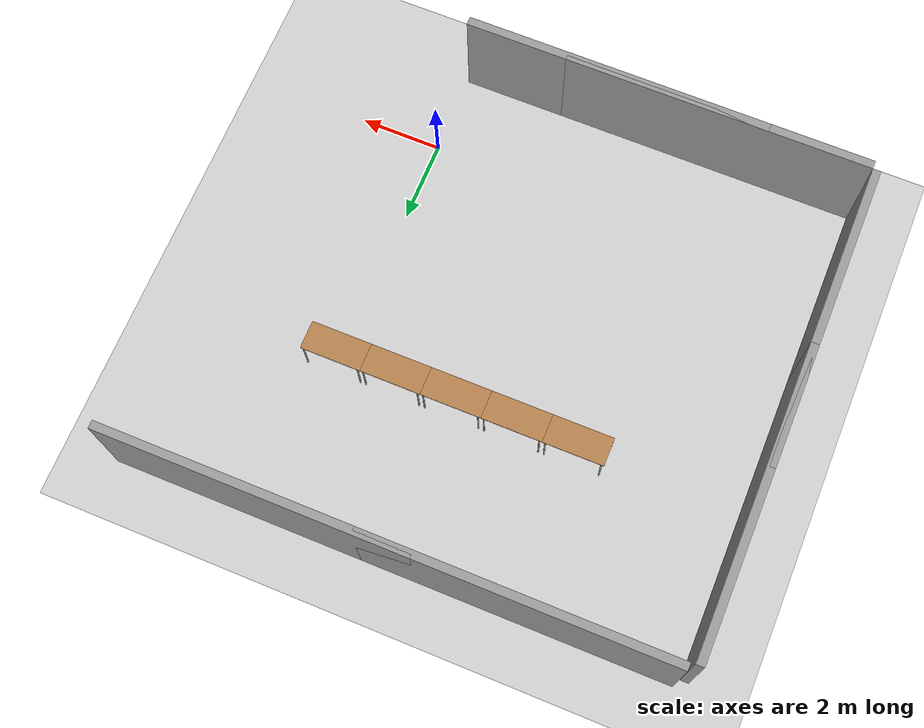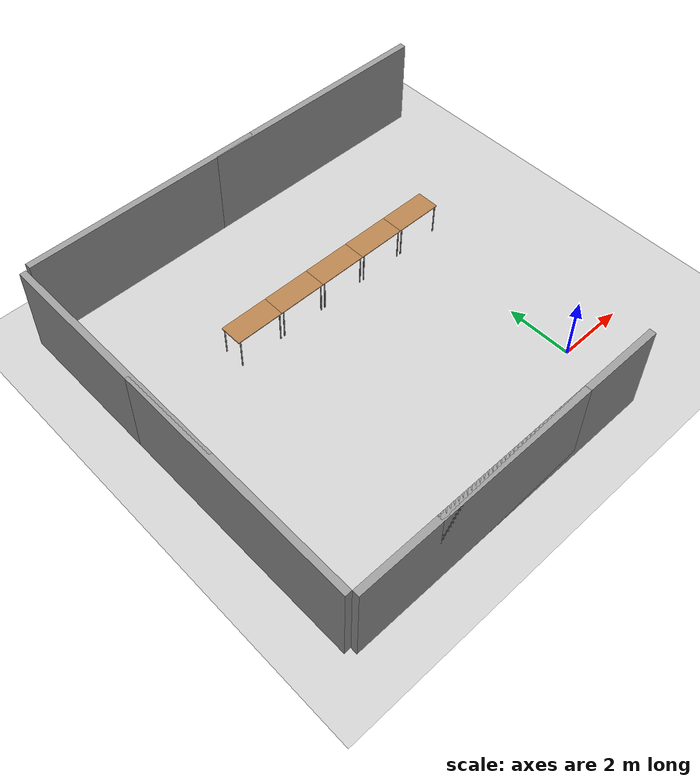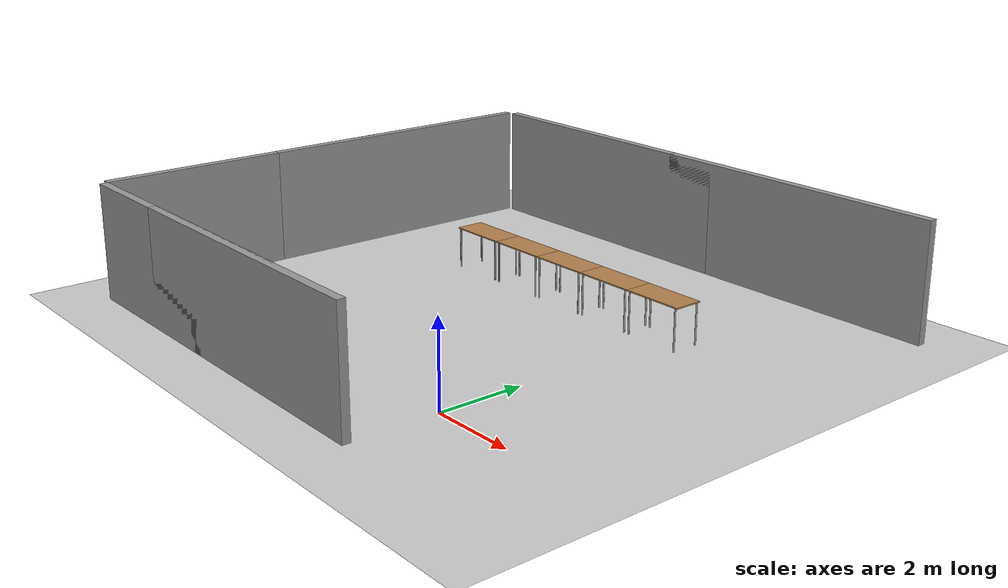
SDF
<sdf version="1.6">
 <world name="default">
  <model name="ground_plane">
   <static>1</static>
   <link name="link">
    <collision name="collision">
     <geometry><plane><normal>0 0 1</normal><size>100 100</size></plane></geometry>
     <surface>
      <contact><collide_bitmask>65535</collide_bitmask></contact>
      <friction><ode><mu>100</mu><mu2>50</mu2></ode></friction>
     </surface>
    </collision>
    <visual name="visual">
     <cast_shadows>0</cast_shadows>
     <geometry><plane><normal>0 0 1</normal><size>100 100</size></plane></geometry>
     <material>
      <script><uri>file://media/materials/scripts/gazebo.material</uri><name>Gazebo/Grey</name></script>
     </material>
    </visual>
   </link>
  </model>
  <model name="grey_wall">
   <static>1</static>
   <link name="link">
    <pose>0 0 1.4 0 -0 0</pose>
    <collision name="collision"><geometry><box><size>7.5 0.2 2.8</size></box></geometry></collision>
    <visual name="visual">
     <cast_shadows>0</cast_shadows>
     <geometry><box><size>7.5 0.2 2.8</size></box></geometry>
     <material>
      <script>
       <uri>model://grey_wall/materials/scripts</uri>
       <uri>model://grey_wall/materials/textures</uri>
       <name>vrc/grey_wall</name>
      </script>
     </material>
    </visual>
   </link>
   <pose>-3.75 -2.1 0 0 -0 0</pose>
  </model>
  <model name="grey_wall_1">
   <static>1</static>
   <link name="link">
    <pose>0 0 1.4 0 -0 0</pose>
    <collision name="collision"><geometry><box><size>7.5 0.2 2.8</size></box></geometry></collision>
    <visual name="visual">
     <cast_shadows>0</cast_shadows>
     <geometry><box><size>7.5 0.2 2.8</size></box></geometry>
     <material>
      <script>
       <uri>model://grey_wall/materials/scripts</uri>
       <uri>model://grey_wall/materials/textures</uri>
       <name>vrc/grey_wall</name>
      </script>
     </material>
    </visual>
   </link>
   <pose>-6.25 -2.1 0 0 -0 0</pose>
  </model>
  <model name="grey_wall_3">
   <static>1</static>
   <link name="link">
    <pose>0 0 1.4 0 -0 0</pose>
    <collision name="collision"><geometry><box><size>7.5 0.2 2.8</size></box></geometry></collision>
    <visual name="visual">
     <cast_shadows>0</cast_shadows>
     <geometry><box><size>7.5 0.2 2.8</size></box></geometry>
     <material>
      <script>
       <uri>model://grey_wall/materials/scripts</uri>
       <uri>model://grey_wall/materials/textures</uri>
       <name>vrc/grey_wall</name>
      </script>
     </material>
    </visual>
   </link>
   <pose>-10.1 1.75 0 0 -0 1.5708</pose>
  </model>
  <model name="grey_wall_3_clone">
   <static>1</static>
   <link name="link">
    <pose>0 0 1.4 0 -0 0</pose>
    <collision name="collision"><geometry><box><size>7.5 0.2 2.8</size></box></geometry></collision>
    <visual name="visual">
     <cast_shadows>0</cast_shadows>
     <geometry><box><size>7.5 0.2 2.8</size></box></geometry>
     <material>
      <script>
       <uri>model://grey_wall/materials/scripts</uri>
       <uri>model://grey_wall/materials/textures</uri>
       <name>vrc/grey_wall</name>
      </script>
     </material>
    </visual>
   </link>
   <pose>-10.1 6.25 0 0 -0 1.5708</pose>
  </model>
  <model name="grey_wall_1_clone">
   <static>1</static>
   <link name="link">
    <pose>0 0 1.4 0 -0 0</pose>
    <collision name="collision"><geometry><box><size>7.5 0.2 2.8</size></box></geometry></collision>
    <visual name="visual">
     <cast_shadows>0</cast_shadows>
     <geometry><box><size>7.5 0.2 2.8</size></box></geometry>
     <material>
      <script>
       <uri>model://grey_wall/materials/scripts</uri>
       <uri>model://grey_wall/materials/textures</uri>
       <name>vrc/grey_wall</name>
      </script>
     </material>
    </visual>
   </link>
   <pose>-6.15 10.1 0 0 -0 0</pose>
  </model>
  <model name="grey_wall_clone">
   <static>1</static>
   <link name="link">
    <pose>0 0 1.4 0 -0 0</pose>
    <collision name="collision"><geometry><box><size>7.5 0.2 2.8</size></box></geometry></collision>
    <visual name="visual">
     <cast_shadows>0</cast_shadows>
     <geometry><box><size>7.5 0.2 2.8</size></box></geometry>
     <material>
      <script>
       <uri>model://grey_wall/materials/scripts</uri>
       <uri>model://grey_wall/materials/textures</uri>
       <name>vrc/grey_wall</name>
      </script>
     </material>
    </visual>
   </link>
   <pose>0 10.1 0 0 -0 0</pose>
  </model>
  <model name="table_17">
   <static>1</static>
   <link name="link">
    <collision name="surface">
     <pose>0 0 1 0 -0 0</pose>
     <geometry><box><size>1.5 0.7 0.03</size></box></geometry>
     <surface><friction><ode><mu>0.6</mu><mu2>0.6</mu2></ode></friction></surface>
    </collision>
    <visual name="visual1">
     <pose>0 0 1 0 -0 0</pose>
     <geometry><box><size>1.5 0.7 0.03</size></box></geometry>
     <material>
      <script><uri>file://media/materials/scripts/gazebo.material</uri><name>Gazebo/Wood</name></script>
     </material>
    </visual>
    <collision name="front_left_leg">
     <pose>0.68 0.33 0.5 0 -0 0</pose>
     <geometry><cylinder><radius>0.02</radius><length>1</length></cylinder></geometry>
    </collision>
    <visual name="front_left_leg">
     <pose>0.68 0.33 0.5 0 -0 0</pose>
     <geometry><cylinder><radius>0.02</radius><length>1</length></cylinder></geometry>
     <material>
      <script><uri>file://media/materials/scripts/gazebo.material</uri><name>Gazebo/Grey</name></script>
     </material>
    </visual>
    <collision name="front_right_leg">
     <pose>0.68 -0.33 0.5 0 -0 0</pose>
     <geometry><cylinder><radius>0.02</radius><length>1</length></cylinder></geometry>
    </collision>
    <visual name="front_right_leg">
     <pose>0.68 -0.33 0.5 0 -0 0</pose>
     <geometry><cylinder><radius>0.02</radius><length>1</length></cylinder></geometry>
     <material>
      <script><uri>file://media/materials/scripts/gazebo.material</uri><name>Gazebo/Grey</name></script>
     </material>
    </visual>
    <collision name="back_right_leg">
     <pose>-0.68 -0.33 0.5 0 -0 0</pose>
     <geometry><cylinder><radius>0.02</radius><length>1</length></cylinder></geometry>
    </collision>
    <visual name="back_right_leg">
     <pose>-0.68 -0.33 0.5 0 -0 0</pose>
     <geometry><cylinder><radius>0.02</radius><length>1</length></cylinder></geometry>
     <material>
      <script><uri>file://media/materials/scripts/gazebo.material</uri><name>Gazebo/Grey</name></script>
     </material>
    </visual>
    <collision name="back_left_leg">
     <pose>-0.68 0.33 0.5 0 -0 0</pose>
     <geometry><cylinder><radius>0.02</radius><length>1</length></cylinder></geometry>
    </collision>
    <visual name="back_left_leg">
     <pose>-0.68 0.33 0.5 0 -0 0</pose>
     <geometry><cylinder><radius>0.02</radius><length>1</length></cylinder></geometry>
     <material>
      <script><uri>file://media/materials/scripts/gazebo.material</uri><name>Gazebo/Grey</name></script>
     </material>
    </visual>
   </link>
   <pose>0 6 0 0 -0 0</pose>
  </model>
  <model name="table_17_clone">
   <static>1</static>
   <link name="link">
    <collision name="surface">
     <pose>0 0 1 0 -0 0</pose>
     <geometry><box><size>1.5 0.7 0.03</size></box></geometry>
     <surface><friction><ode><mu>0.6</mu><mu2>0.6</mu2></ode></friction></surface>
    </collision>
    <visual name="visual1">
     <pose>0 0 1 0 -0 0</pose>
     <geometry><box><size>1.5 0.7 0.03</size></box></geometry>
     <material>
      <script><uri>file://media/materials/scripts/gazebo.material</uri><name>Gazebo/Wood</name></script>
     </material>
    </visual>
    <collision name="front_left_leg">
     <pose>0.68 0.33 0.5 0 -0 0</pose>
     <geometry><cylinder><radius>0.02</radius><length>1</length></cylinder></geometry>
    </collision>
    <visual name="front_left_leg">
     <pose>0.68 0.33 0.5 0 -0 0</pose>
     <geometry><cylinder><radius>0.02</radius><length>1</length></cylinder></geometry>
     <material>
      <script><uri>file://media/materials/scripts/gazebo.material</uri><name>Gazebo/Grey</name></script>
     </material>
    </visual>
    <collision name="front_right_leg">
     <pose>0.68 -0.33 0.5 0 -0 0</pose>
     <geometry><cylinder><radius>0.02</radius><length>1</length></cylinder></geometry>
    </collision>
    <visual name="front_right_leg">
     <pose>0.68 -0.33 0.5 0 -0 0</pose>
     <geometry><cylinder><radius>0.02</radius><length>1</length></cylinder></geometry>
     <material>
      <script><uri>file://media/materials/scripts/gazebo.material</uri><name>Gazebo/Grey</name></script>
     </material>
    </visual>
    <collision name="back_right_leg">
     <pose>-0.68 -0.33 0.5 0 -0 0</pose>
     <geometry><cylinder><radius>0.02</radius><length>1</length></cylinder></geometry>
    </collision>
    <visual name="back_right_leg">
     <pose>-0.68 -0.33 0.5 0 -0 0</pose>
     <geometry><cylinder><radius>0.02</radius><length>1</length></cylinder></geometry>
     <material>
      <script><uri>file://media/materials/scripts/gazebo.material</uri><name>Gazebo/Grey</name></script>
     </material>
    </visual>
    <collision name="back_left_leg">
     <pose>-0.68 0.33 0.5 0 -0 0</pose>
     <geometry><cylinder><radius>0.02</radius><length>1</length></cylinder></geometry>
    </collision>
    <visual name="back_left_leg">
     <pose>-0.68 0.33 0.5 0 -0 0</pose>
     <geometry><cylinder><radius>0.02</radius><length>1</length></cylinder></geometry>
     <material>
      <script><uri>file://media/materials/scripts/gazebo.material</uri><name>Gazebo/Grey</name></script>
     </material>
    </visual>
   </link>
   <pose>-1.5 6 0 0 -0 0</pose>
  </model>
  <model name="table_17_clone_0">
   <static>1</static>
   <link name="link">
    <collision name="surface">
     <pose>0 0 1 0 -0 0</pose>
     <geometry><box><size>1.5 0.7 0.03</size></box></geometry>
     <surface><friction><ode><mu>0.6</mu><mu2>0.6</mu2></ode></friction></surface>
    </collision>
    <visual name="visual1">
     <pose>0 0 1 0 -0 0</pose>
     <geometry><box><size>1.5 0.7 0.03</size></box></geometry>
     <material>
      <script><uri>file://media/materials/scripts/gazebo.material</uri><name>Gazebo/Wood</name></script>
     </material>
    </visual>
    <collision name="front_left_leg">
     <pose>0.68 0.33 0.5 0 -0 0</pose>
     <geometry><cylinder><radius>0.02</radius><length>1</length></cylinder></geometry>
    </collision>
    <visual name="front_left_leg">
     <pose>0.68 0.33 0.5 0 -0 0</pose>
     <geometry><cylinder><radius>0.02</radius><length>1</length></cylinder></geometry>
     <material>
      <script><uri>file://media/materials/scripts/gazebo.material</uri><name>Gazebo/Grey</name></script>
     </material>
    </visual>
    <collision name="front_right_leg">
     <pose>0.68 -0.33 0.5 0 -0 0</pose>
     <geometry><cylinder><radius>0.02</radius><length>1</length></cylinder></geometry>
    </collision>
    <visual name="front_right_leg">
     <pose>0.68 -0.33 0.5 0 -0 0</pose>
     <geometry><cylinder><radius>0.02</radius><length>1</length></cylinder></geometry>
     <material>
      <script><uri>file://media/materials/scripts/gazebo.material</uri><name>Gazebo/Grey</name></script>
     </material>
    </visual>
    <collision name="back_right_leg">
     <pose>-0.68 -0.33 0.5 0 -0 0</pose>
     <geometry><cylinder><radius>0.02</radius><length>1</length></cylinder></geometry>
    </collision>
    <visual name="back_right_leg">
     <pose>-0.68 -0.33 0.5 0 -0 0</pose>
     <geometry><cylinder><radius>0.02</radius><length>1</length></cylinder></geometry>
     <material>
      <script><uri>file://media/materials/scripts/gazebo.material</uri><name>Gazebo/Grey</name></script>
     </material>
    </visual>
    <collision name="back_left_leg">
     <pose>-0.68 0.33 0.5 0 -0 0</pose>
     <geometry><cylinder><radius>0.02</radius><length>1</length></cylinder></geometry>
    </collision>
    <visual name="back_left_leg">
     <pose>-0.68 0.33 0.5 0 -0 0</pose>
     <geometry><cylinder><radius>0.02</radius><length>1</length></cylinder></geometry>
     <material>
      <script><uri>file://media/materials/scripts/gazebo.material</uri><name>Gazebo/Grey</name></script>
     </material>
    </visual>
   </link>
   <pose>-3 6 0 0 -0 0</pose>
  </model>
  <model name="table_17_clone_1">
   <static>1</static>
   <link name="link">
    <collision name="surface">
     <pose>0 0 1 0 -0 0</pose>
     <geometry><box><size>1.5 0.7 0.03</size></box></geometry>
     <surface><friction><ode><mu>0.6</mu><mu2>0.6</mu2></ode></friction></surface>
    </collision>
    <visual name="visual1">
     <pose>0 0 1 0 -0 0</pose>
     <geometry><box><size>1.5 0.7 0.03</size></box></geometry>
     <material>
      <script><uri>file://media/materials/scripts/gazebo.material</uri><name>Gazebo/Wood</name></script>
     </material>
    </visual>
    <collision name="front_left_leg">
     <pose>0.68 0.33 0.5 0 -0 0</pose>
     <geometry><cylinder><radius>0.02</radius><length>1</length></cylinder></geometry>
    </collision>
    <visual name="front_left_leg">
     <pose>0.68 0.33 0.5 0 -0 0</pose>
     <geometry><cylinder><radius>0.02</radius><length>1</length></cylinder></geometry>
     <material>
      <script><uri>file://media/materials/scripts/gazebo.material</uri><name>Gazebo/Grey</name></script>
     </material>
    </visual>
    <collision name="front_right_leg">
     <pose>0.68 -0.33 0.5 0 -0 0</pose>
     <geometry><cylinder><radius>0.02</radius><length>1</length></cylinder></geometry>
    </collision>
    <visual name="front_right_leg">
     <pose>0.68 -0.33 0.5 0 -0 0</pose>
     <geometry><cylinder><radius>0.02</radius><length>1</length></cylinder></geometry>
     <material>
      <script><uri>file://media/materials/scripts/gazebo.material</uri><name>Gazebo/Grey</name></script>
     </material>
    </visual>
    <collision name="back_right_leg">
     <pose>-0.68 -0.33 0.5 0 -0 0</pose>
     <geometry><cylinder><radius>0.02</radius><length>1</length></cylinder></geometry>
    </collision>
    <visual name="back_right_leg">
     <pose>-0.68 -0.33 0.5 0 -0 0</pose>
     <geometry><cylinder><radius>0.02</radius><length>1</length></cylinder></geometry>
     <material>
      <script><uri>file://media/materials/scripts/gazebo.material</uri><name>Gazebo/Grey</name></script>
     </material>
    </visual>
    <collision name="back_left_leg">
     <pose>-0.68 0.33 0.5 0 -0 0</pose>
     <geometry><cylinder><radius>0.02</radius><length>1</length></cylinder></geometry>
    </collision>
    <visual name="back_left_leg">
     <pose>-0.68 0.33 0.5 0 -0 0</pose>
     <geometry><cylinder><radius>0.02</radius><length>1</length></cylinder></geometry>
     <material>
      <script><uri>file://media/materials/scripts/gazebo.material</uri><name>Gazebo/Grey</name></script>
     </material>
    </visual>
   </link>
   <pose>-4.5 6 0 0 -0 0</pose>
  </model>
  <model name="table_17_clone_2">
   <static>1</static>
   <link name="link">
    <collision name="surface">
     <pose>0 0 1 0 -0 0</pose>
     <geometry><box><size>1.5 0.7 0.03</size></box></geometry>
     <surface><friction><ode><mu>0.6</mu><mu2>0.6</mu2></ode></friction></surface>
    </collision>
    <visual name="visual1">
     <pose>0 0 1 0 -0 0</pose>
     <geometry><box><size>1.5 0.7 0.03</size></box></geometry>
     <material>
      <script><uri>file://media/materials/scripts/gazebo.material</uri><name>Gazebo/Wood</name></script>
     </material>
    </visual>
    <collision name="front_left_leg">
     <pose>0.68 0.33 0.5 0 -0 0</pose>
     <geometry><cylinder><radius>0.02</radius><length>1</length></cylinder></geometry>
    </collision>
    <visual name="front_left_leg">
     <pose>0.68 0.33 0.5 0 -0 0</pose>
     <geometry><cylinder><radius>0.02</radius><length>1</length></cylinder></geometry>
     <material>
      <script><uri>file://media/materials/scripts/gazebo.material</uri><name>Gazebo/Grey</name></script>
     </material>
    </visual>
    <collision name="front_right_leg">
     <pose>0.68 -0.33 0.5 0 -0 0</pose>
     <geometry><cylinder><radius>0.02</radius><length>1</length></cylinder></geometry>
    </collision>
    <visual name="front_right_leg">
     <pose>0.68 -0.33 0.5 0 -0 0</pose>
     <geometry><cylinder><radius>0.02</radius><length>1</length></cylinder></geometry>
     <material>
      <script><uri>file://media/materials/scripts/gazebo.material</uri><name>Gazebo/Grey</name></script>
     </material>
    </visual>
    <collision name="back_right_leg">
     <pose>-0.68 -0.33 0.5 0 -0 0</pose>
     <geometry><cylinder><radius>0.02</radius><length>1</length></cylinder></geometry>
    </collision>
    <visual name="back_right_leg">
     <pose>-0.68 -0.33 0.5 0 -0 0</pose>
     <geometry><cylinder><radius>0.02</radius><length>1</length></cylinder></geometry>
     <material>
      <script><uri>file://media/materials/scripts/gazebo.material</uri><name>Gazebo/Grey</name></script>
     </material>
    </visual>
    <collision name="back_left_leg">
     <pose>-0.68 0.33 0.5 0 -0 0</pose>
     <geometry><cylinder><radius>0.02</radius><length>1</length></cylinder></geometry>
    </collision>
    <visual name="back_left_leg">
     <pose>-0.68 0.33 0.5 0 -0 0</pose>
     <geometry><cylinder><radius>0.02</radius><length>1</length></cylinder></geometry>
     <material>
      <script><uri>file://media/materials/scripts/gazebo.material</uri><name>Gazebo/Grey</name></script>
     </material>
    </visual>
   </link>
   <pose>-6 6 0 0 -0 0</pose>
  </model>
 </world>
</sdf>
